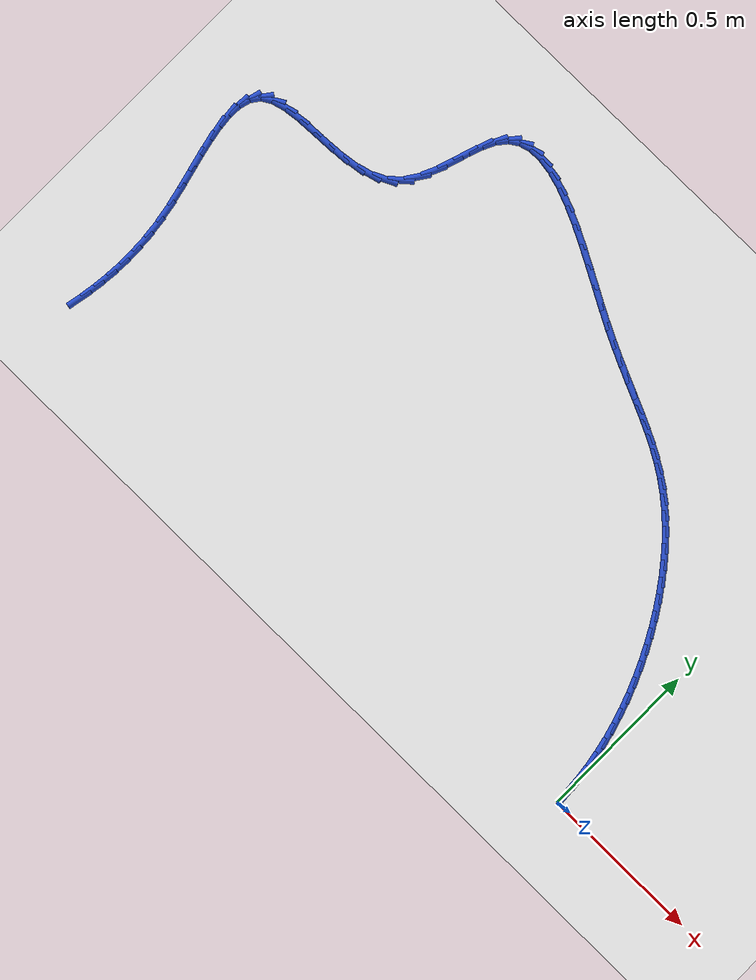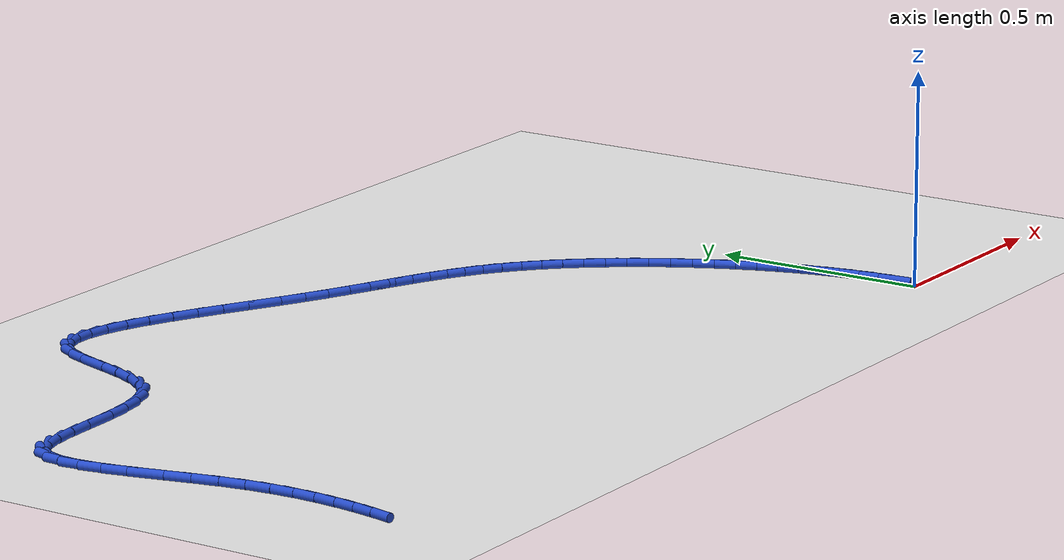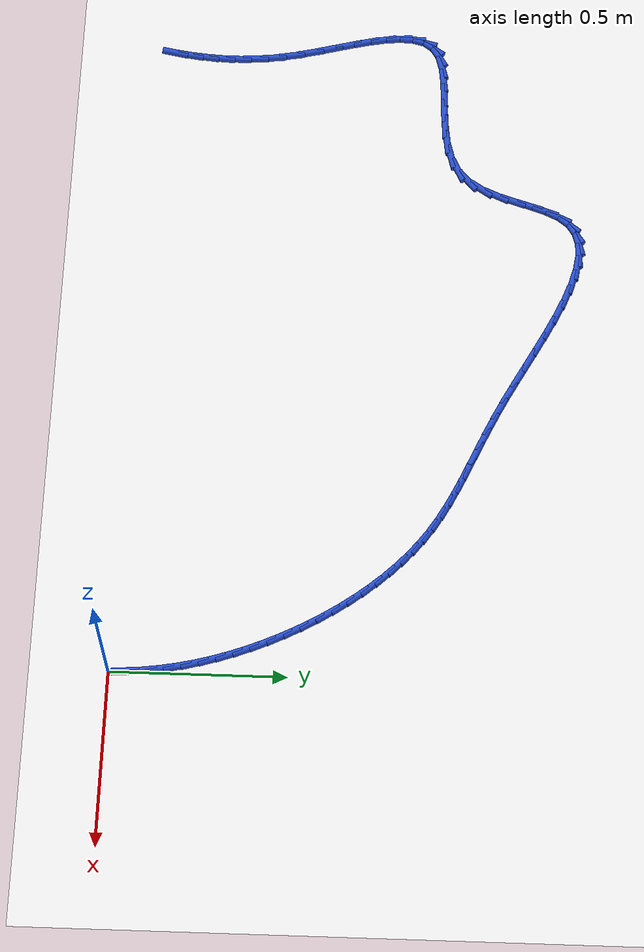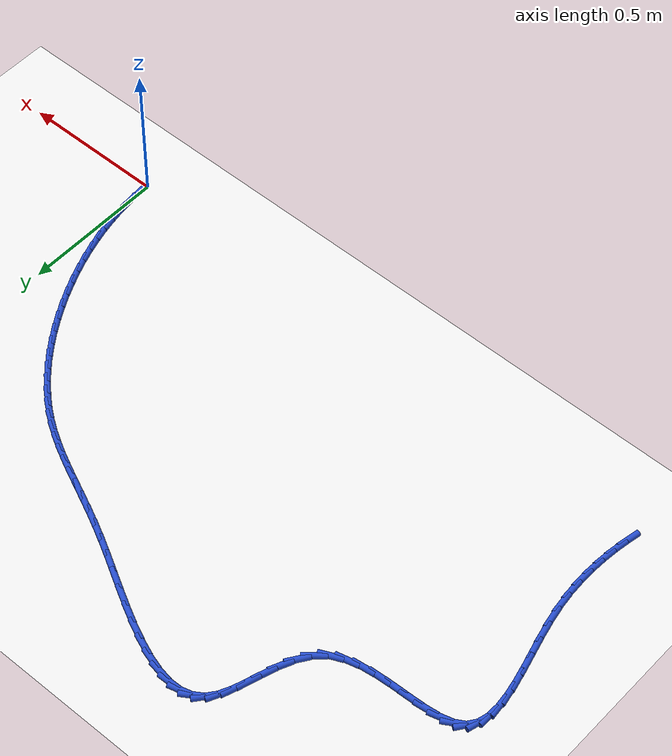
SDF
<sdf version="1.6">
 <world name="default">
  <model name="ground_plane">
   <static>1</static>
   <link name="link">
    <collision name="collision">
     <geometry><plane><normal>0 0 1</normal><size>100 100</size></plane></geometry>
     <surface><friction><ode><mu>100</mu><mu2>50</mu2></ode></friction></surface>
    </collision>
    <visual name="visual">
     <cast_shadows>0</cast_shadows>
     <geometry><plane><normal>0 0 1</normal><size>100 100</size></plane></geometry>
     <material>
      <script><uri>file://media/materials/scripts/gazebo.material</uri><name>Gazebo/WhiteGlow</name></script>
     </material>
    </visual>
   </link>
  </model>
  <model name="line">
   <link name="link_1">
    <pose>-0.0014700015047816955 0.04833890452229398 0.01 0 1.57 -1.4905525584799248</pose>
    <collision name="collision">
     <geometry><cylinder><radius>0.01</radius><length>0.08</length></cylinder></geometry>
    </collision>
    <visual name="visual">
     <material>
      <script><name>Gazebo/Blue</name><uri>file://media/materials/scripts/gazebo.material</uri></script>
     </material>
     <geometry><cylinder><radius>0.01</radius><length>0.08</length></cylinder></geometry>
    </visual>
   </link>
   <link name="link_2">
    <pose>-0.005338020853893343 0.09643875981137744 0.01 0 1.57 -1.4418619348056134</pose>
    <collision name="collision">
     <geometry><cylinder><radius>0.01</radius><length>0.08</length></cylinder></geometry>
    </collision>
    <visual name="visual">
     <material>
      <script><name>Gazebo/Blue</name><uri>file://media/materials/scripts/gazebo.material</uri></script>
     </material>
     <geometry><cylinder><radius>0.01</radius><length>0.08</length></cylinder></geometry>
    </visual>
   </link>
   <link name="link_3">
    <pose>-0.011541491594309458 0.14428524070696477 0.01 0 1.57 -1.3944919175950468</pose>
    <collision name="collision">
     <geometry><cylinder><radius>0.01</radius><length>0.08</length></cylinder></geometry>
    </collision>
    <visual name="visual">
     <material>
      <script><name>Gazebo/Blue</name><uri>file://media/materials/scripts/gazebo.material</uri></script>
     </material>
     <geometry><cylinder><radius>0.01</radius><length>0.08</length></cylinder></geometry>
    </visual>
   </link>
   <link name="link_4">
    <pose>-0.020017847273004555 0.19186402204877043 0.01 0 1.57 -1.3485784081164802</pose>
    <collision name="collision">
     <geometry><cylinder><radius>0.01</radius><length>0.08</length></cylinder></geometry>
    </collision>
    <visual name="visual">
     <material>
      <script><name>Gazebo/Blue</name><uri>file://media/materials/scripts/gazebo.material</uri></script>
     </material>
     <geometry><cylinder><radius>0.01</radius><length>0.08</length></cylinder></geometry>
    </visual>
   </link>
   <link name="link_5">
    <pose>-0.03070452143695314 0.23916077867650878 0.01 0 1.57 -1.3042248079501102</pose>
    <collision name="collision">
     <geometry><cylinder><radius>0.01</radius><length>0.08</length></cylinder></geometry>
    </collision>
    <visual name="visual">
     <material>
      <script><name>Gazebo/Blue</name><uri>file://media/materials/scripts/gazebo.material</uri></script>
     </material>
     <geometry><cylinder><radius>0.01</radius><length>0.08</length></cylinder></geometry>
    </visual>
   </link>
   <link name="link_6">
    <pose>-0.04353894763312974 0.28616118542989427 0.01 0 1.57 -1.2615034236477323</pose>
    <collision name="collision">
     <geometry><cylinder><radius>0.01</radius><length>0.08</length></cylinder></geometry>
    </collision>
    <visual name="visual">
     <material>
      <script><name>Gazebo/Blue</name><uri>file://media/materials/scripts/gazebo.material</uri></script>
     </material>
     <geometry><cylinder><radius>0.01</radius><length>0.08</length></cylinder></geometry>
    </visual>
   </link>
   <link name="link_7">
    <pose>-0.05845855940850886 0.33285091714864123 0.01 0 1.57 -1.2204579246176617</pose>
    <collision name="collision">
     <geometry><cylinder><radius>0.01</radius><length>0.08</length></cylinder></geometry>
    </collision>
    <visual name="visual">
     <material>
      <script><name>Gazebo/Blue</name><uri>file://media/materials/scripts/gazebo.material</uri></script>
     </material>
     <geometry><cylinder><radius>0.01</radius><length>0.08</length></cylinder></geometry>
    </visual>
   </link>
   <link name="link_8">
    <pose>-0.07540079031006502 0.37921564867246427 0.01 0 1.57 -1.1810928882082674</pose>
    <collision name="collision">
     <geometry><cylinder><radius>0.01</radius><length>0.08</length></cylinder></geometry>
    </collision>
    <visual name="visual">
     <material>
      <script><name>Gazebo/Blue</name><uri>file://media/materials/scripts/gazebo.material</uri></script>
     </material>
     <geometry><cylinder><radius>0.01</radius><length>0.08</length></cylinder></geometry>
    </visual>
   </link>
   <link name="link_9">
    <pose>-0.09430291855344151 0.4252388939659872 0.01 0 1.57 -1.1428250796314008</pose>
    <collision name="collision">
     <geometry><cylinder><radius>0.01</radius><length>0.08</length></cylinder></geometry>
    </collision>
    <visual name="visual">
     <material>
      <script><name>Gazebo/Blue</name><uri>file://media/materials/scripts/gazebo.material</uri></script>
     </material>
     <geometry><cylinder><radius>0.01</radius><length>0.08</length></cylinder></geometry>
    </visual>
   </link>
   <link name="link_10">
    <pose>-0.11509628794032653 0.4708216110330309 0.01 0 1.57 -1.1046605332326702</pose>
    <collision name="collision">
     <geometry><cylinder><radius>0.01</radius><length>0.08</length></cylinder></geometry>
    </collision>
    <visual name="visual">
     <material>
      <script><name>Gazebo/Blue</name><uri>file://media/materials/scripts/gazebo.material</uri></script>
     </material>
     <geometry><cylinder><radius>0.01</radius><length>0.08</length></cylinder></geometry>
    </visual>
   </link>
   <link name="link_11">
    <pose>-0.1377045929425613 0.5157583450488197 0.01 0 1.57 -1.0661541797765959</pose>
    <collision name="collision">
     <geometry><cylinder><radius>0.01</radius><length>0.08</length></cylinder></geometry>
    </collision>
    <visual name="visual">
     <material>
      <script><name>Gazebo/Blue</name><uri>file://media/materials/scripts/gazebo.material</uri></script>
     </material>
     <geometry><cylinder><radius>0.01</radius><length>0.08</length></cylinder></geometry>
    </visual>
   </link>
   <link name="link_12">
    <pose>-0.16205102277417044 0.5598366123488632 0.01 0 1.57 -1.026907348692087</pose>
    <collision name="collision">
     <geometry><cylinder><radius>0.01</radius><length>0.08</length></cylinder></geometry>
    </collision>
    <visual name="visual">
     <material>
      <script><name>Gazebo/Blue</name><uri>file://media/materials/scripts/gazebo.material</uri></script>
     </material>
     <geometry><cylinder><radius>0.01</radius><length>0.08</length></cylinder></geometry>
    </visual>
   </link>
   <link name="link_13">
    <pose>-0.1880587666491787 0.6028439292686713 0.01 0 1.57 -0.9865142577737583</pose>
    <collision name="collision">
     <geometry><cylinder><radius>0.01</radius><length>0.08</length></cylinder></geometry>
    </collision>
    <visual name="visual">
     <material>
      <script><name>Gazebo/Blue</name><uri>file://media/materials/scripts/gazebo.material</uri></script>
     </material>
     <geometry><cylinder><radius>0.01</radius><length>0.08</length></cylinder></geometry>
    </visual>
   </link>
   <link name="link_14">
    <pose>-0.2156510137816109 0.6445678121437545 0.01 0 1.57 -0.9445535184200536</pose>
    <collision name="collision">
     <geometry><cylinder><radius>0.01</radius><length>0.08</length></cylinder></geometry>
    </collision>
    <visual name="visual">
     <material>
      <script><name>Gazebo/Blue</name><uri>file://media/materials/scripts/gazebo.material</uri></script>
     </material>
     <geometry><cylinder><radius>0.01</radius><length>0.08</length></cylinder></geometry>
    </visual>
   </link>
   <link name="link_15">
    <pose>-0.2447509533854917 0.6847957773096223 0.01 0 1.57 -0.9005804672008982</pose>
    <collision name="collision">
     <geometry><cylinder><radius>0.01</radius><length>0.08</length></cylinder></geometry>
    </collision>
    <visual name="visual">
     <material>
      <script><name>Gazebo/Blue</name><uri>file://media/materials/scripts/gazebo.material</uri></script>
     </material>
     <geometry><cylinder><radius>0.01</radius><length>0.08</length></cylinder></geometry>
    </visual>
   </link>
   <link name="link_16">
    <pose>-0.27528177467484577 0.7233153411017847 0.01 0 1.57 -0.8541206822435852</pose>
    <collision name="collision">
     <geometry><cylinder><radius>0.01</radius><length>0.08</length></cylinder></geometry>
    </collision>
    <visual name="visual">
     <material>
      <script><name>Gazebo/Blue</name><uri>file://media/materials/scripts/gazebo.material</uri></script>
     </material>
     <geometry><cylinder><radius>0.01</radius><length>0.08</length></cylinder></geometry>
    </visual>
   </link>
   <link name="link_17">
    <pose>-0.30716666686369803 0.7599140198557524 0.01 0 1.57 -0.8046654321002452</pose>
    <collision name="collision">
     <geometry><cylinder><radius>0.01</radius><length>0.08</length></cylinder></geometry>
    </collision>
    <visual name="visual">
     <material>
      <script><name>Gazebo/Blue</name><uri>file://media/materials/scripts/gazebo.material</uri></script>
     </material>
     <geometry><cylinder><radius>0.01</radius><length>0.08</length></cylinder></geometry>
    </visual>
   </link>
   <link name="link_18">
    <pose>-0.34032881916607305 0.7943793299070345 0.01 0 1.57 -0.7516703677932546</pose>
    <collision name="collision">
     <geometry><cylinder><radius>0.01</radius><length>0.08</length></cylinder></geometry>
    </collision>
    <visual name="visual">
     <material>
      <script><name>Gazebo/Blue</name><uri>file://media/materials/scripts/gazebo.material</uri></script>
     </material>
     <geometry><cylinder><radius>0.01</radius><length>0.08</length></cylinder></geometry>
    </visual>
   </link>
   <link name="link_19">
    <pose>-0.3746914207959958 0.826498787591142 0.01 0 1.57 -0.6945595492141571</pose>
    <collision name="collision">
     <geometry><cylinder><radius>0.01</radius><length>0.08</length></cylinder></geometry>
    </collision>
    <visual name="visual">
     <material>
      <script><name>Gazebo/Blue</name><uri>file://media/materials/scripts/gazebo.material</uri></script>
     </material>
     <geometry><cylinder><radius>0.01</radius><length>0.08</length></cylinder></geometry>
    </visual>
   </link>
   <link name="link_20">
    <pose>-0.41017766096749053 0.8560599092435841 0.01 0 1.57 -0.6330172715650902</pose>
    <collision name="collision">
     <geometry><cylinder><radius>0.01</radius><length>0.08</length></cylinder></geometry>
    </collision>
    <visual name="visual">
     <material>
      <script><name>Gazebo/Blue</name><uri>file://media/materials/scripts/gazebo.material</uri></script>
     </material>
     <geometry><cylinder><radius>0.01</radius><length>0.08</length></cylinder></geometry>
    </visual>
   </link>
   <link name="link_21">
    <pose>-0.44671487801135473 0.882868953788108 0.01 0 1.57 -0.5727634175690438</pose>
    <collision name="collision">
     <geometry><cylinder><radius>0.01</radius><length>0.08</length></cylinder></geometry>
    </collision>
    <visual name="visual">
     <material>
      <script><name>Gazebo/Blue</name><uri>file://media/materials/scripts/gazebo.material</uri></script>
     </material>
     <geometry><cylinder><radius>0.01</radius><length>0.08</length></cylinder></geometry>
    </visual>
   </link>
   <link name="link_22">
    <pose>-0.4843155191185739 0.9071166379522276 0.01 0 1.57 -0.5209109166484821</pose>
    <collision name="collision">
     <geometry><cylinder><radius>0.01</radius><length>0.08</length></cylinder></geometry>
    </collision>
    <visual name="visual">
     <material>
      <script><name>Gazebo/Blue</name><uri>file://media/materials/scripts/gazebo.material</uri></script>
     </material>
     <geometry><cylinder><radius>0.01</radius><length>0.08</length></cylinder></geometry>
    </visual>
   </link>
   <link name="link_23">
    <pose>-0.5230717731653142 0.9293538914082086 0.01 0 1.57 -0.47928181927860614</pose>
    <collision name="collision">
     <geometry><cylinder><radius>0.01</radius><length>0.08</length></cylinder></geometry>
    </collision>
    <visual name="visual">
     <material>
      <script><name>Gazebo/Blue</name><uri>file://media/materials/scripts/gazebo.material</uri></script>
     </material>
     <geometry><cylinder><radius>0.01</radius><length>0.08</length></cylinder></geometry>
    </visual>
   </link>
   <link name="link_24">
    <pose>-0.5630789032815207 0.9501455309941594 0.01 0 1.57 -0.4487235242197466</pose>
    <collision name="collision">
     <geometry><cylinder><radius>0.01</radius><length>0.08</length></cylinder></geometry>
    </collision>
    <visual name="visual">
     <material>
      <script><name>Gazebo/Blue</name><uri>file://media/materials/scripts/gazebo.material</uri></script>
     </material>
     <geometry><cylinder><radius>0.01</radius><length>0.08</length></cylinder></geometry>
    </visual>
   </link>
   <link name="link_25">
    <pose>-0.6044321725971386 0.9700563735481884 0.01 0 1.57 -0.42938831676605915</pose>
    <collision name="collision">
     <geometry><cylinder><radius>0.01</radius><length>0.08</length></cylinder></geometry>
    </collision>
    <visual name="visual">
     <material>
      <script><name>Gazebo/Blue</name><uri>file://media/materials/scripts/gazebo.material</uri></script>
     </material>
     <geometry><cylinder><radius>0.01</radius><length>0.08</length></cylinder></geometry>
    </visual>
   </link>
   <link name="link_26">
    <pose>-0.6472268442421124 0.9896512359084035 0.01 0 1.57 -0.42087494429750116</pose>
    <collision name="collision">
     <geometry><cylinder><radius>0.01</radius><length>0.08</length></cylinder></geometry>
    </collision>
    <visual name="visual">
     <material>
      <script><name>Gazebo/Blue</name><uri>file://media/materials/scripts/gazebo.material</uri></script>
     </material>
     <geometry><cylinder><radius>0.01</radius><length>0.08</length></cylinder></geometry>
    </visual>
   </link>
   <link name="link_27">
    <pose>-0.6915581813463882 1.0094949349129139 0.01 0 1.57 -0.42238129655033674</pose>
    <collision name="collision">
     <geometry><cylinder><radius>0.01</radius><length>0.08</length></cylinder></geometry>
    </collision>
    <visual name="visual">
     <material>
      <script><name>Gazebo/Blue</name><uri>file://media/materials/scripts/gazebo.material</uri></script>
     </material>
     <geometry><cylinder><radius>0.01</radius><length>0.08</length></cylinder></geometry>
    </visual>
   </link>
   <link name="link_28">
    <pose>-0.7375214470399101 1.0301522873998266 0.01 0 1.57 -0.43283712403460456</pose>
    <collision name="collision">
     <geometry><cylinder><radius>0.01</radius><length>0.08</length></cylinder></geometry>
    </collision>
    <visual name="visual">
     <material>
      <script><name>Gazebo/Blue</name><uri>file://media/materials/scripts/gazebo.material</uri></script>
     </material>
     <geometry><cylinder><radius>0.01</radius><length>0.08</length></cylinder></geometry>
    </visual>
   </link>
   <link name="link_29">
    <pose>-0.7852119044526238 1.052188110207251 0.01 0 1.57 -0.4510090140028726</pose>
    <collision name="collision">
     <geometry><cylinder><radius>0.01</radius><length>0.08</length></cylinder></geometry>
    </collision>
    <visual name="visual">
     <material>
      <script><name>Gazebo/Blue</name><uri>file://media/materials/scripts/gazebo.material</uri></script>
     </material>
     <geometry><cylinder><radius>0.01</radius><length>0.08</length></cylinder></geometry>
    </visual>
   </link>
   <link name="link_30">
    <pose>-0.8347248167144743 1.0761672201732948 0.01 0 1.57 -0.47500331755660985</pose>
    <collision name="collision">
     <geometry><cylinder><radius>0.01</radius><length>0.08</length></cylinder></geometry>
    </collision>
    <visual name="visual">
     <material>
      <script><name>Gazebo/Blue</name><uri>file://media/materials/scripts/gazebo.material</uri></script>
     </material>
     <geometry><cylinder><radius>0.01</radius><length>0.08</length></cylinder></geometry>
    </visual>
   </link>
   <link name="link_31">
    <pose>-0.8861343882812149 1.1026059448422485 0.01 0 1.57 -0.4942131199377108</pose>
    <collision name="collision">
     <geometry><cylinder><radius>0.01</radius><length>0.08</length></cylinder></geometry>
    </collision>
    <visual name="visual">
     <material>
      <script><name>Gazebo/Blue</name><uri>file://media/materials/scripts/gazebo.material</uri></script>
     </material>
     <geometry><cylinder><radius>0.01</radius><length>0.08</length></cylinder></geometry>
    </visual>
   </link>
   <link name="link_32">
    <pose>-0.939144797298409 1.1311685963697733 0.01 0 1.57 -0.5017601034455197</pose>
    <collision name="collision">
     <geometry><cylinder><radius>0.01</radius><length>0.08</length></cylinder></geometry>
    </collision>
    <visual name="visual">
     <material>
      <script><name>Gazebo/Blue</name><uri>file://media/materials/scripts/gazebo.material</uri></script>
     </material>
     <geometry><cylinder><radius>0.01</radius><length>0.08</length></cylinder></geometry>
    </visual>
   </link>
   <link name="link_33">
    <pose>-0.9931443782543097 1.1607922314461274 0.01 0 1.57 -0.498547334348503</pose>
    <collision name="collision">
     <geometry><cylinder><radius>0.01</radius><length>0.08</length></cylinder></geometry>
    </collision>
    <visual name="visual">
     <material>
      <script><name>Gazebo/Blue</name><uri>file://media/materials/scripts/gazebo.material</uri></script>
     </material>
     <geometry><cylinder><radius>0.01</radius><length>0.08</length></cylinder></geometry>
    </visual>
   </link>
   <link name="link_34">
    <pose>-1.0475113287188682 1.1903905656905476 0.01 0 1.57 -0.4845716500360975</pose>
    <collision name="collision">
     <geometry><cylinder><radius>0.01</radius><length>0.08</length></cylinder></geometry>
    </collision>
    <visual name="visual">
     <material>
      <script><name>Gazebo/Blue</name><uri>file://media/materials/scripts/gazebo.material</uri></script>
     </material>
     <geometry><cylinder><radius>0.01</radius><length>0.08</length></cylinder></geometry>
    </visual>
   </link>
   <link name="link_35">
    <pose>-1.101623846262037 1.2188773147222722 0.01 0 1.57 -0.45868744966806807</pose>
    <collision name="collision">
     <geometry><cylinder><radius>0.01</radius><length>0.08</length></cylinder></geometry>
    </collision>
    <visual name="visual">
     <material>
      <script><name>Gazebo/Blue</name><uri>file://media/materials/scripts/gazebo.material</uri></script>
     </material>
     <geometry><cylinder><radius>0.01</radius><length>0.08</length></cylinder></geometry>
    </visual>
   </link>
   <link name="link_36">
    <pose>-1.1548601284537683 1.2451661941605388 0.01 0 1.57 -0.4183849131545252</pose>
    <collision name="collision">
     <geometry><cylinder><radius>0.01</radius><length>0.08</length></cylinder></geometry>
    </collision>
    <visual name="visual">
     <material>
      <script><name>Gazebo/Blue</name><uri>file://media/materials/scripts/gazebo.material</uri></script>
     </material>
     <geometry><cylinder><radius>0.01</radius><length>0.08</length></cylinder></geometry>
    </visual>
   </link>
   <link name="link_37">
    <pose>-1.206598372864014 1.2681709196245843 0.01 0 1.57 -0.3592544600759173</pose>
    <collision name="collision">
     <geometry><cylinder><radius>0.01</radius><length>0.08</length></cylinder></geometry>
    </collision>
    <visual name="visual">
     <material>
      <script><name>Gazebo/Blue</name><uri>file://media/materials/scripts/gazebo.material</uri></script>
     </material>
     <geometry><cylinder><radius>0.01</radius><length>0.08</length></cylinder></geometry>
    </visual>
   </link>
   <link name="link_38">
    <pose>-1.256216777062726 1.2868052067336466 0.01 0 1.57 -0.2740384587538279</pose>
    <collision name="collision">
     <geometry><cylinder><radius>0.01</radius><length>0.08</length></cylinder></geometry>
    </collision>
    <visual name="visual">
     <material>
      <script><name>Gazebo/Blue</name><uri>file://media/materials/scripts/gazebo.material</uri></script>
     </material>
     <geometry><cylinder><radius>0.01</radius><length>0.08</length></cylinder></geometry>
    </visual>
   </link>
   <link name="link_39">
    <pose>-1.303093538619856 1.2999827711069638 0.01 0 1.57 -0.15130655509844626</pose>
    <collision name="collision">
     <geometry><cylinder><radius>0.01</radius><length>0.08</length></cylinder></geometry>
    </collision>
    <visual name="visual">
     <material>
      <script><name>Gazebo/Blue</name><uri>file://media/materials/scripts/gazebo.material</uri></script>
     </material>
     <geometry><cylinder><radius>0.01</radius><length>0.08</length></cylinder></geometry>
    </visual>
   </link>
   <link name="link_40">
    <pose>-1.346606855105357 1.3066173283637725 0.01 0 1.57 0.025159952422445273</pose>
    <collision name="collision">
     <geometry><cylinder><radius>0.01</radius><length>0.08</length></cylinder></geometry>
    </collision>
    <visual name="visual">
     <material>
      <script><name>Gazebo/Blue</name><uri>file://media/materials/scripts/gazebo.material</uri></script>
     </material>
     <geometry><cylinder><radius>0.01</radius><length>0.08</length></cylinder></geometry>
    </visual>
   </link>
   <link name="link_41">
    <pose>-1.38613492408918 1.3056225941233106 0.01 0 1.57 0.27121339722972543</pose>
    <collision name="collision">
     <geometry><cylinder><radius>0.01</radius><length>0.08</length></cylinder></geometry>
    </collision>
    <visual name="visual">
     <material>
      <script><name>Gazebo/Blue</name><uri>file://media/materials/scripts/gazebo.material</uri></script>
     </material>
     <geometry><cylinder><radius>0.01</radius><length>0.08</length></cylinder></geometry>
    </visual>
   </link>
   <link name="link_42">
    <pose>-1.421055943141278 1.2959122840048165 0.01 0 1.57 0.5813843029608146</pose>
    <collision name="collision">
     <geometry><cylinder><radius>0.01</radius><length>0.08</length></cylinder></geometry>
    </collision>
    <visual name="visual">
     <material>
      <script><name>Gazebo/Blue</name><uri>file://media/materials/scripts/gazebo.material</uri></script>
     </material>
     <geometry><cylinder><radius>0.01</radius><length>0.08</length></cylinder></geometry>
    </visual>
   </link>
   <link name="link_43">
    <pose>-1.450748109831602 1.2764001136275265 0.01 0 1.57 0.9028113712699611</pose>
    <collision name="collision">
     <geometry><cylinder><radius>0.01</radius><length>0.08</length></cylinder></geometry>
    </collision>
    <visual name="visual">
     <material>
      <script><name>Gazebo/Blue</name><uri>file://media/materials/scripts/gazebo.material</uri></script>
     </material>
     <geometry><cylinder><radius>0.01</radius><length>0.08</length></cylinder></geometry>
    </visual>
   </link>
   <link name="link_44">
    <pose>-1.4746551207610308 1.2460989352192935 0.01 0 1.57 1.1278436671565717</pose>
    <collision name="collision">
     <geometry><cylinder><radius>0.01</radius><length>0.08</length></cylinder></geometry>
    </collision>
    <visual name="visual">
     <material>
      <script><name>Gazebo/Blue</name><uri>file://media/materials/scripts/gazebo.material</uri></script>
     </material>
     <geometry><cylinder><radius>0.01</radius><length>0.08</length></cylinder></geometry>
    </visual>
   </link>
   <link name="link_45">
    <pose>-1.4936150824372239 1.2061321218389334 0.01 0 1.57 1.2357545950595765</pose>
    <collision name="collision">
     <geometry><cylinder><radius>0.01</radius><length>0.08</length></cylinder></geometry>
    </collision>
    <visual name="visual">
     <material>
      <script><name>Gazebo/Blue</name><uri>file://media/materials/scripts/gazebo.material</uri></script>
     </material>
     <geometry><cylinder><radius>0.01</radius><length>0.08</length></cylinder></geometry>
    </visual>
   </link>
   <link name="link_46">
    <pose>-1.5098009546337579 1.159643424922019 0.01 0 1.57 1.2664430498191577</pose>
    <collision name="collision">
     <geometry><cylinder><radius>0.01</radius><length>0.08</length></cylinder></geometry>
    </collision>
    <visual name="visual">
     <material>
      <script><name>Gazebo/Blue</name><uri>file://media/materials/scripts/gazebo.material</uri></script>
     </material>
     <geometry><cylinder><radius>0.01</radius><length>0.08</length></cylinder></geometry>
    </visual>
   </link>
   <link name="link_47">
    <pose>-1.5254392777120986 1.1098576932531345 0.01 0 1.57 1.2364991724893934</pose>
    <collision name="collision">
     <geometry><cylinder><radius>0.01</radius><length>0.08</length></cylinder></geometry>
    </collision>
    <visual name="visual">
     <material>
      <script><name>Gazebo/Blue</name><uri>file://media/materials/scripts/gazebo.material</uri></script>
     </material>
     <geometry><cylinder><radius>0.01</radius><length>0.08</length></cylinder></geometry>
    </visual>
   </link>
   <link name="link_48">
    <pose>-1.5427565920337118 1.0599997756168642 0.01 0 1.57 1.1442897762193545</pose>
    <collision name="collision">
     <geometry><cylinder><radius>0.01</radius><length>0.08</length></cylinder></geometry>
    </collision>
    <visual name="visual">
     <material>
      <script><name>Gazebo/Blue</name><uri>file://media/materials/scripts/gazebo.material</uri></script>
     </material>
     <geometry><cylinder><radius>0.01</radius><length>0.08</length></cylinder></geometry>
    </visual>
   </link>
   <link name="link_49">
    <pose>-1.5639794379600636 1.0132945207977917 0.01 0 1.57 0.9747727064990936</pose>
    <collision name="collision">
     <geometry><cylinder><radius>0.01</radius><length>0.08</length></cylinder></geometry>
    </collision>
    <visual name="visual">
     <material>
      <script><name>Gazebo/Blue</name><uri>file://media/materials/scripts/gazebo.material</uri></script>
     </material>
     <geometry><cylinder><radius>0.01</radius><length>0.08</length></cylinder></geometry>
    </visual>
   </link>
   <link name="link_50">
    <pose>-1.5913343558526196 0.9729667775805014 0.01 0 1.57 0.7133617323919044</pose>
    <collision name="collision">
     <geometry><cylinder><radius>0.01</radius><length>0.08</length></cylinder></geometry>
    </collision>
    <visual name="visual">
     <material>
      <script><name>Gazebo/Blue</name><uri>file://media/materials/scripts/gazebo.material</uri></script>
     </material>
     <geometry><cylinder><radius>0.01</radius><length>0.08</length></cylinder></geometry>
    </visual>
   </link>
   <link name="link_51">
    <pose>-1.6269608597573857 0.9421359227537957 0.01 0 1.57 0.44175981498868566</pose>
    <collision name="collision">
     <geometry><cylinder><radius>0.01</radius><length>0.08</length></cylinder></geometry>
    </collision>
    <visual name="visual">
     <material>
      <script><name>Gazebo/Blue</name><uri>file://media/materials/scripts/gazebo.material</uri></script>
     </material>
     <geometry><cylinder><radius>0.01</radius><length>0.08</length></cylinder></geometry>
    </visual>
   </link>
   <link name="link_52">
    <pose>-1.6708867059713308 0.9213619773159422 0.01 0 1.57 0.25010813463742065</pose>
    <collision name="collision">
     <geometry><cylinder><radius>0.01</radius><length>0.08</length></cylinder></geometry>
    </collision>
    <visual name="visual">
     <material>
      <script><name>Gazebo/Blue</name><uri>file://media/materials/scripts/gazebo.material</uri></script>
     </material>
     <geometry><cylinder><radius>0.01</radius><length>0.08</length></cylinder></geometry>
    </visual>
   </link>
   <link name="link_53">
    <pose>-1.7209648215612499 0.9085691666649782 0.01 0 1.57 0.12909898963427596</pose>
    <collision name="collision">
     <geometry><cylinder><radius>0.01</radius><length>0.08</length></cylinder></geometry>
    </collision>
    <visual name="visual">
     <material>
      <script><name>Gazebo/Blue</name><uri>file://media/materials/scripts/gazebo.material</uri></script>
     </material>
     <geometry><cylinder><radius>0.01</radius><length>0.08</length></cylinder></geometry>
    </visual>
   </link>
   <link name="link_54">
    <pose>-1.7749484895573153 0.9015609520903517 0.01 0 1.57 0.061389395709760784</pose>
    <collision name="collision">
     <geometry><cylinder><radius>0.01</radius><length>0.08</length></cylinder></geometry>
    </collision>
    <visual name="visual">
     <material>
      <script><name>Gazebo/Blue</name><uri>file://media/materials/scripts/gazebo.material</uri></script>
     </material>
     <geometry><cylinder><radius>0.01</radius><length>0.08</length></cylinder></geometry>
    </visual>
   </link>
   <link name="link_55">
    <pose>-1.8305909929896986 0.8981407948815096 0.01 0 1.57 0.03683107973037563</pose>
    <collision name="collision">
     <geometry><cylinder><radius>0.01</radius><length>0.08</length></cylinder></geometry>
    </collision>
    <visual name="visual">
     <material>
      <script><name>Gazebo/Blue</name><uri>file://media/materials/scripts/gazebo.material</uri></script>
     </material>
     <geometry><cylinder><radius>0.01</radius><length>0.08</length></cylinder></geometry>
    </visual>
   </link>
   <link name="link_56">
    <pose>-1.885645614888574 0.8961121563278991 0.01 0 1.57 0.05421066541980383</pose>
    <collision name="collision">
     <geometry><cylinder><radius>0.01</radius><length>0.08</length></cylinder></geometry>
    </collision>
    <visual name="visual">
     <material>
      <script><name>Gazebo/Blue</name><uri>file://media/materials/scripts/gazebo.material</uri></script>
     </material>
     <geometry><cylinder><radius>0.01</radius><length>0.08</length></cylinder></geometry>
    </visual>
   </link>
   <link name="link_57">
    <pose>-1.9378656382841117 0.8932784977189667 0.01 0 1.57 0.12316169303003952</pose>
    <collision name="collision">
     <geometry><cylinder><radius>0.01</radius><length>0.08</length></cylinder></geometry>
    </collision>
    <visual name="visual">
     <material>
      <script><name>Gazebo/Blue</name><uri>file://media/materials/scripts/gazebo.material</uri></script>
     </material>
     <geometry><cylinder><radius>0.01</radius><length>0.08</length></cylinder></geometry>
    </visual>
   </link>
   <link name="link_58">
    <pose>-1.9850043462064861 0.8874432803441609 0.01 0 1.57 0.2703589593264915</pose>
    <collision name="collision">
     <geometry><cylinder><radius>0.01</radius><length>0.08</length></cylinder></geometry>
    </collision>
    <visual name="visual">
     <material>
      <script><name>Gazebo/Blue</name><uri>file://media/materials/scripts/gazebo.material</uri></script>
     </material>
     <geometry><cylinder><radius>0.01</radius><length>0.08</length></cylinder></geometry>
    </visual>
   </link>
   <link name="link_59">
    <pose>-2.024815021685868 0.8764099654929276 0.01 0 1.57 0.5473379196692671</pose>
    <collision name="collision">
     <geometry><cylinder><radius>0.01</radius><length>0.08</length></cylinder></geometry>
    </collision>
    <visual name="visual">
     <material>
      <script><name>Gazebo/Blue</name><uri>file://media/materials/scripts/gazebo.material</uri></script>
     </material>
     <geometry><cylinder><radius>0.01</radius><length>0.08</length></cylinder></geometry>
    </visual>
   </link>
   <link name="link_60">
    <pose>-2.055051428395079 0.8579824351364899 0.01 0 1.57 0.9561282580025697</pose>
    <collision name="collision">
     <geometry><cylinder><radius>0.01</radius><length>0.08</length></cylinder></geometry>
    </collision>
    <visual name="visual">
     <material>
      <script><name>Gazebo/Blue</name><uri>file://media/materials/scripts/gazebo.material</uri></script>
     </material>
     <geometry><cylinder><radius>0.01</radius><length>0.08</length></cylinder></geometry>
    </visual>
   </link>
   <link name="link_61">
    <pose>-2.0743089694504455 0.8307012149385453 0.01 0 1.57 1.309626006054948</pose>
    <collision name="collision">
     <geometry><cylinder><radius>0.01</radius><length>0.08</length></cylinder></geometry>
    </collision>
    <visual name="visual">
     <material>
      <script><name>Gazebo/Blue</name><uri>file://media/materials/scripts/gazebo.material</uri></script>
     </material>
     <geometry><cylinder><radius>0.01</radius><length>0.08</length></cylinder></geometry>
    </visual>
   </link>
   <link name="link_62">
    <pose>-2.08375528293967 0.7953581754609503 0.01 0 1.57 1.5401687017596222</pose>
    <collision name="collision">
     <geometry><cylinder><radius>0.01</radius><length>0.08</length></cylinder></geometry>
    </collision>
    <visual name="visual">
     <material>
      <script><name>Gazebo/Blue</name><uri>file://media/materials/scripts/gazebo.material</uri></script>
     </material>
     <geometry><cylinder><radius>0.01</radius><length>0.08</length></cylinder></geometry>
    </visual>
   </link>
   <link name="link_63">
    <pose>-2.085047694750176 0.7531737857963612 0.01 0 1.57 -1.462361610571226</pose>
    <collision name="collision">
     <geometry><cylinder><radius>0.01</radius><length>0.08</length></cylinder></geometry>
    </collision>
    <visual name="visual">
     <material>
      <script><name>Gazebo/Blue</name><uri>file://media/materials/scripts/gazebo.material</uri></script>
     </material>
     <geometry><cylinder><radius>0.01</radius><length>0.08</length></cylinder></geometry>
    </visual>
   </link>
   <link name="link_64">
    <pose>-2.079843530769392 0.7053685150374346 0.01 0 1.57 -1.3807367475252352</pose>
    <collision name="collision">
     <geometry><cylinder><radius>0.01</radius><length>0.08</length></cylinder></geometry>
    </collision>
    <visual name="visual">
     <material>
      <script><name>Gazebo/Blue</name><uri>file://media/materials/scripts/gazebo.material</uri></script>
     </material>
     <geometry><cylinder><radius>0.01</radius><length>0.08</length></cylinder></geometry>
    </visual>
   </link>
   <link name="link_65">
    <pose>-2.0698001168847435 0.6531628322768265 0.01 0 1.57 -1.3363991016524521</pose>
    <collision name="collision">
     <geometry><cylinder><radius>0.01</radius><length>0.08</length></cylinder></geometry>
    </collision>
    <visual name="visual">
     <material>
      <script><name>Gazebo/Blue</name><uri>file://media/materials/scripts/gazebo.material</uri></script>
     </material>
     <geometry><cylinder><radius>0.01</radius><length>0.08</length></cylinder></geometry>
    </visual>
   </link>
   <link name="link_66">
    <pose>-2.0565747789836566 0.5977772066071935 0.01 0 1.57 -1.319040057331741</pose>
    <collision name="collision">
     <geometry><cylinder><radius>0.01</radius><length>0.08</length></cylinder></geometry>
    </collision>
    <visual name="visual">
     <material>
      <script><name>Gazebo/Blue</name><uri>file://media/materials/scripts/gazebo.material</uri></script>
     </material>
     <geometry><cylinder><radius>0.01</radius><length>0.08</length></cylinder></geometry>
    </visual>
   </link>
   <link name="link_67">
    <pose>-2.041824842953558 0.5404321071211909 0.01 0 1.57 -1.324259765639215</pose>
    <collision name="collision">
     <geometry><cylinder><radius>0.01</radius><length>0.08</length></cylinder></geometry>
    </collision>
    <visual name="visual">
     <material>
      <script><name>Gazebo/Blue</name><uri>file://media/materials/scripts/gazebo.material</uri></script>
     </material>
     <geometry><cylinder><radius>0.01</radius><length>0.08</length></cylinder></geometry>
    </visual>
   </link>
   <link name="link_68">
    <pose>-2.0272076346818744 0.4823480029114765 0.01 0 1.57 -1.3516878999902016</pose>
    <collision name="collision">
     <geometry><cylinder><radius>0.01</radius><length>0.08</length></cylinder></geometry>
    </collision>
    <visual name="visual">
     <material>
      <script><name>Gazebo/Blue</name><uri>file://media/materials/scripts/gazebo.material</uri></script>
     </material>
     <geometry><cylinder><radius>0.01</radius><length>0.08</length></cylinder></geometry>
    </visual>
   </link>
   <link name="link_69">
    <pose>-2.014380480056032 0.42474536307070604 0.01 0 1.57 -1.4028089462743119</pose>
    <collision name="collision">
     <geometry><cylinder><radius>0.01</radius><length>0.08</length></cylinder></geometry>
    </collision>
    <visual name="visual">
     <material>
      <script><name>Gazebo/Blue</name><uri>file://media/materials/scripts/gazebo.material</uri></script>
     </material>
     <geometry><cylinder><radius>0.01</radius><length>0.08</length></cylinder></geometry>
    </visual>
   </link>
   <link name="link_70">
    <pose>-2.004887013682652 0.3687649866076289 0.01 0 1.57 -1.4639432106400057</pose>
    <collision name="collision">
     <geometry><cylinder><radius>0.01</radius><length>0.08</length></cylinder></geometry>
    </collision>
    <visual name="visual">
     <material>
      <script><name>Gazebo/Blue</name><uri>file://media/materials/scripts/gazebo.material</uri></script>
     </material>
     <geometry><cylinder><radius>0.01</radius><length>0.08</length></cylinder></geometry>
    </visual>
   </link>
   <link name="link_71">
    <pose>-1.9990900835492122 0.3147202267641924 0.01 0 1.57 -1.5242138840212</pose>
    <collision name="collision">
     <geometry><cylinder><radius>0.01</radius><length>0.08</length></cylinder></geometry>
    </collision>
    <visual name="visual">
     <material>
      <script><name>Gazebo/Blue</name><uri>file://media/materials/scripts/gazebo.material</uri></script>
     </material>
     <geometry><cylinder><radius>0.01</radius><length>0.08</length></cylinder></geometry>
    </visual>
   </link>
   <link name="link_72">
    <pose>-1.9966527011130464 0.2624340206775812 0.01 0 1.57 1.5594382615160245</pose>
    <collision name="collision">
     <geometry><cylinder><radius>0.01</radius><length>0.08</length></cylinder></geometry>
    </collision>
    <visual name="visual">
     <material>
      <script><name>Gazebo/Blue</name><uri>file://media/materials/scripts/gazebo.material</uri></script>
     </material>
     <geometry><cylinder><radius>0.01</radius><length>0.08</length></cylinder></geometry>
    </visual>
   </link>
   <link name="link_73">
    <pose>-1.9972287063458751 0.21172287849230825 0.01 0 1.57 1.505131314645567</pose>
    <collision name="collision">
     <geometry><cylinder><radius>0.01</radius><length>0.08</length></cylinder></geometry>
    </collision>
    <visual name="visual">
     <material>
      <script><name>Gazebo/Blue</name><uri>file://media/materials/scripts/gazebo.material</uri></script>
     </material>
     <geometry><cylinder><radius>0.01</radius><length>0.08</length></cylinder></geometry>
    </visual>
   </link>
   <link name="link_74">
    <pose>-2.0004719392194197 0.1624033103528871 0.01 0 1.57 1.4556535782360034</pose>
    <collision name="collision">
     <geometry><cylinder><radius>0.01</radius><length>0.08</length></cylinder></geometry>
    </collision>
    <visual name="visual">
     <material>
      <script><name>Gazebo/Blue</name><uri>file://media/materials/scripts/gazebo.material</uri></script>
     </material>
     <geometry><cylinder><radius>0.01</radius><length>0.08</length></cylinder></geometry>
    </visual>
   </link>
   <link name="link_75">
    <pose>-2.0060362397054 0.11429182640383104 0.01 0 1.57 1.4120311995359334</pose>
    <collision name="collision">
     <geometry><cylinder><radius>0.01</radius><length>0.08</length></cylinder></geometry>
    </collision>
    <visual name="visual">
     <material>
      <script><name>Gazebo/Blue</name><uri>file://media/materials/scripts/gazebo.material</uri></script>
     </material>
     <geometry><cylinder><radius>0.01</radius><length>0.08</length></cylinder></geometry>
    </visual>
   </link>
   <link name="link_76">
    <pose>-2.0135754477755365 0.06720493678965321 0.01 0 1.57 1.3750896683005083</pose>
    <collision name="collision">
     <geometry><cylinder><radius>0.01</radius><length>0.08</length></cylinder></geometry>
    </collision>
    <visual name="visual">
     <material>
      <script><name>Gazebo/Blue</name><uri>file://media/materials/scripts/gazebo.material</uri></script>
     </material>
     <geometry><cylinder><radius>0.01</radius><length>0.08</length></cylinder></geometry>
    </visual>
   </link>
  </model>
 </world>
</sdf>
